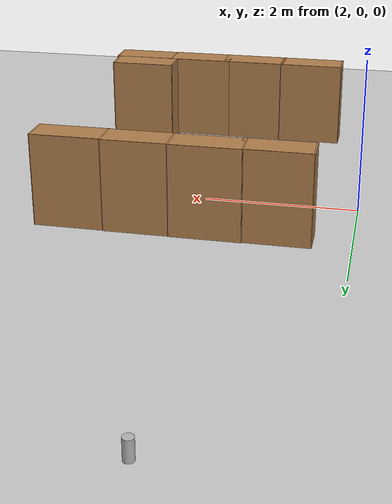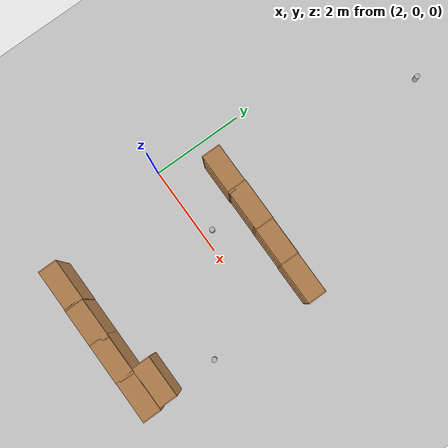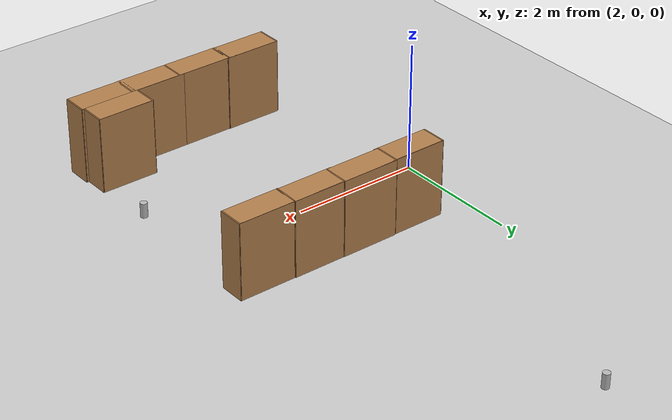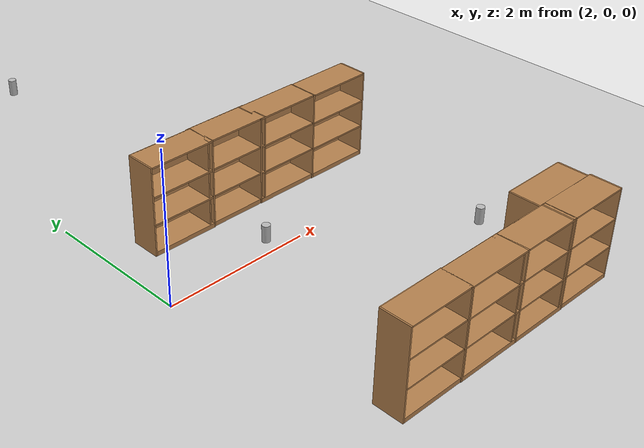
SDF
<sdf version="1.7">
 <world name="default">
  <model name="ground_plane">
   <static>1</static>
   <link name="link">
    <collision name="collision">
     <geometry><plane><normal>0 0 1</normal><size>100 100</size></plane></geometry>
     <surface>
      <contact><collide_bitmask>65535</collide_bitmask></contact>
      <friction><ode><mu>100</mu><mu2>50</mu2></ode></friction>
     </surface>
    </collision>
    <visual name="visual">
     <cast_shadows>0</cast_shadows>
     <geometry><plane><normal>0 0 1</normal><size>100 100</size></plane></geometry>
     <material>
      <script><uri>file://media/materials/scripts/gazebo.material</uri><name>Gazebo/Grey</name></script>
     </material>
    </visual>
   </link>
  </model>
  <model name="bookshelf">
   <static>1</static>
   <link name="link">
    <inertial><mass>1</mass></inertial>
    <collision name="back">
     <pose>0 0.005 0.6 0 -0 0</pose>
     <geometry><box><size>0.9 0.01 1.2</size></box></geometry>
    </collision>
    <visual name="visual1">
     <pose>0 0.005 0.6 0 -0 0</pose>
     <geometry><box><size>0.9 0.01 1.2</size></box></geometry>
     <material>
      <script><uri>file://media/materials/scripts/gazebo.material</uri><name>Gazebo/Wood</name></script>
     </material>
    </visual>
    <collision name="left_side">
     <pose>0.45 -0.195 0.6 0 -0 0</pose>
     <geometry><box><size>0.02 0.4 1.2</size></box></geometry>
    </collision>
    <visual name="visual2">
     <pose>0.45 -0.195 0.6 0 -0 0</pose>
     <geometry><box><size>0.02 0.4 1.2</size></box></geometry>
     <material>
      <script><uri>file://media/materials/scripts/gazebo.material</uri><name>Gazebo/Wood</name></script>
     </material>
    </visual>
    <collision name="right_side">
     <pose>-0.45 -0.195 0.6 0 -0 0</pose>
     <geometry><box><size>0.02 0.4 1.2</size></box></geometry>
    </collision>
    <visual name="visual3">
     <pose>-0.45 -0.195 0.6 0 -0 0</pose>
     <geometry><box><size>0.02 0.4 1.2</size></box></geometry>
     <material>
      <script><uri>file://media/materials/scripts/gazebo.material</uri><name>Gazebo/Wood</name></script>
     </material>
    </visual>
    <collision name="bottom">
     <pose>0 -0.195 0.03 0 -0 0</pose>
     <geometry><box><size>0.88 0.4 0.06</size></box></geometry>
    </collision>
    <visual name="visual4">
     <pose>0 -0.195 0.03 0 -0 0</pose>
     <geometry><box><size>0.88 0.4 0.06</size></box></geometry>
     <material>
      <script><uri>file://media/materials/scripts/gazebo.material</uri><name>Gazebo/Wood</name></script>
     </material>
    </visual>
    <collision name="top">
     <pose>0 -0.195 1.19 0 -0 0</pose>
     <geometry><box><size>0.88 0.4 0.02</size></box></geometry>
    </collision>
    <visual name="visual5">
     <pose>0 -0.195 1.19 0 -0 0</pose>
     <geometry><box><size>0.88 0.4 0.02</size></box></geometry>
     <material>
      <script><uri>file://media/materials/scripts/gazebo.material</uri><name>Gazebo/Wood</name></script>
     </material>
    </visual>
    <collision name="low_shelf">
     <pose>0 -0.195 0.43 0 -0 0</pose>
     <geometry><box><size>0.88 0.4 0.02</size></box></geometry>
    </collision>
    <visual name="visual6">
     <pose>0 -0.195 0.43 0 -0 0</pose>
     <geometry><box><size>0.88 0.4 0.02</size></box></geometry>
     <material>
      <script><uri>file://media/materials/scripts/gazebo.material</uri><name>Gazebo/Wood</name></script>
     </material>
    </visual>
    <collision name="high_shelf">
     <pose>0 -0.195 0.8 0 -0 0</pose>
     <geometry><box><size>0.88 0.4 0.02</size></box></geometry>
    </collision>
    <visual name="visual7">
     <pose>0 -0.195 0.8 0 -0 0</pose>
     <geometry><box><size>0.88 0.4 0.02</size></box></geometry>
     <material>
      <script><uri>file://media/materials/scripts/gazebo.material</uri><name>Gazebo/Wood</name></script>
     </material>
    </visual>
   </link>
   <pose>5.47624 -2.56833 0 0 -0 0</pose>
  </model>
  <model name="bookshelf_0">
   <static>1</static>
   <link name="link">
    <inertial><mass>1</mass></inertial>
    <collision name="back">
     <pose>0 0.005 0.6 0 -0 0</pose>
     <geometry><box><size>0.9 0.01 1.2</size></box></geometry>
    </collision>
    <visual name="visual1">
     <pose>0 0.005 0.6 0 -0 0</pose>
     <geometry><box><size>0.9 0.01 1.2</size></box></geometry>
     <material>
      <script><uri>file://media/materials/scripts/gazebo.material</uri><name>Gazebo/Wood</name></script>
     </material>
    </visual>
    <collision name="left_side">
     <pose>0.45 -0.195 0.6 0 -0 0</pose>
     <geometry><box><size>0.02 0.4 1.2</size></box></geometry>
    </collision>
    <visual name="visual2">
     <pose>0.45 -0.195 0.6 0 -0 0</pose>
     <geometry><box><size>0.02 0.4 1.2</size></box></geometry>
     <material>
      <script><uri>file://media/materials/scripts/gazebo.material</uri><name>Gazebo/Wood</name></script>
     </material>
    </visual>
    <collision name="right_side">
     <pose>-0.45 -0.195 0.6 0 -0 0</pose>
     <geometry><box><size>0.02 0.4 1.2</size></box></geometry>
    </collision>
    <visual name="visual3">
     <pose>-0.45 -0.195 0.6 0 -0 0</pose>
     <geometry><box><size>0.02 0.4 1.2</size></box></geometry>
     <material>
      <script><uri>file://media/materials/scripts/gazebo.material</uri><name>Gazebo/Wood</name></script>
     </material>
    </visual>
    <collision name="bottom">
     <pose>0 -0.195 0.03 0 -0 0</pose>
     <geometry><box><size>0.88 0.4 0.06</size></box></geometry>
    </collision>
    <visual name="visual4">
     <pose>0 -0.195 0.03 0 -0 0</pose>
     <geometry><box><size>0.88 0.4 0.06</size></box></geometry>
     <material>
      <script><uri>file://media/materials/scripts/gazebo.material</uri><name>Gazebo/Wood</name></script>
     </material>
    </visual>
    <collision name="top">
     <pose>0 -0.195 1.19 0 -0 0</pose>
     <geometry><box><size>0.88 0.4 0.02</size></box></geometry>
    </collision>
    <visual name="visual5">
     <pose>0 -0.195 1.19 0 -0 0</pose>
     <geometry><box><size>0.88 0.4 0.02</size></box></geometry>
     <material>
      <script><uri>file://media/materials/scripts/gazebo.material</uri><name>Gazebo/Wood</name></script>
     </material>
    </visual>
    <collision name="low_shelf">
     <pose>0 -0.195 0.43 0 -0 0</pose>
     <geometry><box><size>0.88 0.4 0.02</size></box></geometry>
    </collision>
    <visual name="visual6">
     <pose>0 -0.195 0.43 0 -0 0</pose>
     <geometry><box><size>0.88 0.4 0.02</size></box></geometry>
     <material>
      <script><uri>file://media/materials/scripts/gazebo.material</uri><name>Gazebo/Wood</name></script>
     </material>
    </visual>
    <collision name="high_shelf">
     <pose>0 -0.195 0.8 0 -0 0</pose>
     <geometry><box><size>0.88 0.4 0.02</size></box></geometry>
    </collision>
    <visual name="visual7">
     <pose>0 -0.195 0.8 0 -0 0</pose>
     <geometry><box><size>0.88 0.4 0.02</size></box></geometry>
     <material>
      <script><uri>file://media/materials/scripts/gazebo.material</uri><name>Gazebo/Wood</name></script>
     </material>
    </visual>
   </link>
   <pose>4.62121 -2.57351 0 0 -0 0</pose>
  </model>
  <model name="bookshelf_1">
   <static>1</static>
   <link name="link">
    <inertial><mass>1</mass></inertial>
    <collision name="back">
     <pose>0 0.005 0.6 0 -0 0</pose>
     <geometry><box><size>0.9 0.01 1.2</size></box></geometry>
    </collision>
    <visual name="visual1">
     <pose>0 0.005 0.6 0 -0 0</pose>
     <geometry><box><size>0.9 0.01 1.2</size></box></geometry>
     <material>
      <script><uri>file://media/materials/scripts/gazebo.material</uri><name>Gazebo/Wood</name></script>
     </material>
    </visual>
    <collision name="left_side">
     <pose>0.45 -0.195 0.6 0 -0 0</pose>
     <geometry><box><size>0.02 0.4 1.2</size></box></geometry>
    </collision>
    <visual name="visual2">
     <pose>0.45 -0.195 0.6 0 -0 0</pose>
     <geometry><box><size>0.02 0.4 1.2</size></box></geometry>
     <material>
      <script><uri>file://media/materials/scripts/gazebo.material</uri><name>Gazebo/Wood</name></script>
     </material>
    </visual>
    <collision name="right_side">
     <pose>-0.45 -0.195 0.6 0 -0 0</pose>
     <geometry><box><size>0.02 0.4 1.2</size></box></geometry>
    </collision>
    <visual name="visual3">
     <pose>-0.45 -0.195 0.6 0 -0 0</pose>
     <geometry><box><size>0.02 0.4 1.2</size></box></geometry>
     <material>
      <script><uri>file://media/materials/scripts/gazebo.material</uri><name>Gazebo/Wood</name></script>
     </material>
    </visual>
    <collision name="bottom">
     <pose>0 -0.195 0.03 0 -0 0</pose>
     <geometry><box><size>0.88 0.4 0.06</size></box></geometry>
    </collision>
    <visual name="visual4">
     <pose>0 -0.195 0.03 0 -0 0</pose>
     <geometry><box><size>0.88 0.4 0.06</size></box></geometry>
     <material>
      <script><uri>file://media/materials/scripts/gazebo.material</uri><name>Gazebo/Wood</name></script>
     </material>
    </visual>
    <collision name="top">
     <pose>0 -0.195 1.19 0 -0 0</pose>
     <geometry><box><size>0.88 0.4 0.02</size></box></geometry>
    </collision>
    <visual name="visual5">
     <pose>0 -0.195 1.19 0 -0 0</pose>
     <geometry><box><size>0.88 0.4 0.02</size></box></geometry>
     <material>
      <script><uri>file://media/materials/scripts/gazebo.material</uri><name>Gazebo/Wood</name></script>
     </material>
    </visual>
    <collision name="low_shelf">
     <pose>0 -0.195 0.43 0 -0 0</pose>
     <geometry><box><size>0.88 0.4 0.02</size></box></geometry>
    </collision>
    <visual name="visual6">
     <pose>0 -0.195 0.43 0 -0 0</pose>
     <geometry><box><size>0.88 0.4 0.02</size></box></geometry>
     <material>
      <script><uri>file://media/materials/scripts/gazebo.material</uri><name>Gazebo/Wood</name></script>
     </material>
    </visual>
    <collision name="high_shelf">
     <pose>0 -0.195 0.8 0 -0 0</pose>
     <geometry><box><size>0.88 0.4 0.02</size></box></geometry>
    </collision>
    <visual name="visual7">
     <pose>0 -0.195 0.8 0 -0 0</pose>
     <geometry><box><size>0.88 0.4 0.02</size></box></geometry>
     <material>
      <script><uri>file://media/materials/scripts/gazebo.material</uri><name>Gazebo/Wood</name></script>
     </material>
    </visual>
   </link>
   <pose>3.79592 -2.57373 0 0 -0 0</pose>
  </model>
  <model name="bookshelf_2">
   <static>1</static>
   <link name="link">
    <inertial><mass>1</mass></inertial>
    <collision name="back">
     <pose>0 0.005 0.6 0 -0 0</pose>
     <geometry><box><size>0.9 0.01 1.2</size></box></geometry>
    </collision>
    <visual name="visual1">
     <pose>0 0.005 0.6 0 -0 0</pose>
     <geometry><box><size>0.9 0.01 1.2</size></box></geometry>
     <material>
      <script><uri>file://media/materials/scripts/gazebo.material</uri><name>Gazebo/Wood</name></script>
     </material>
    </visual>
    <collision name="left_side">
     <pose>0.45 -0.195 0.6 0 -0 0</pose>
     <geometry><box><size>0.02 0.4 1.2</size></box></geometry>
    </collision>
    <visual name="visual2">
     <pose>0.45 -0.195 0.6 0 -0 0</pose>
     <geometry><box><size>0.02 0.4 1.2</size></box></geometry>
     <material>
      <script><uri>file://media/materials/scripts/gazebo.material</uri><name>Gazebo/Wood</name></script>
     </material>
    </visual>
    <collision name="right_side">
     <pose>-0.45 -0.195 0.6 0 -0 0</pose>
     <geometry><box><size>0.02 0.4 1.2</size></box></geometry>
    </collision>
    <visual name="visual3">
     <pose>-0.45 -0.195 0.6 0 -0 0</pose>
     <geometry><box><size>0.02 0.4 1.2</size></box></geometry>
     <material>
      <script><uri>file://media/materials/scripts/gazebo.material</uri><name>Gazebo/Wood</name></script>
     </material>
    </visual>
    <collision name="bottom">
     <pose>0 -0.195 0.03 0 -0 0</pose>
     <geometry><box><size>0.88 0.4 0.06</size></box></geometry>
    </collision>
    <visual name="visual4">
     <pose>0 -0.195 0.03 0 -0 0</pose>
     <geometry><box><size>0.88 0.4 0.06</size></box></geometry>
     <material>
      <script><uri>file://media/materials/scripts/gazebo.material</uri><name>Gazebo/Wood</name></script>
     </material>
    </visual>
    <collision name="top">
     <pose>0 -0.195 1.19 0 -0 0</pose>
     <geometry><box><size>0.88 0.4 0.02</size></box></geometry>
    </collision>
    <visual name="visual5">
     <pose>0 -0.195 1.19 0 -0 0</pose>
     <geometry><box><size>0.88 0.4 0.02</size></box></geometry>
     <material>
      <script><uri>file://media/materials/scripts/gazebo.material</uri><name>Gazebo/Wood</name></script>
     </material>
    </visual>
    <collision name="low_shelf">
     <pose>0 -0.195 0.43 0 -0 0</pose>
     <geometry><box><size>0.88 0.4 0.02</size></box></geometry>
    </collision>
    <visual name="visual6">
     <pose>0 -0.195 0.43 0 -0 0</pose>
     <geometry><box><size>0.88 0.4 0.02</size></box></geometry>
     <material>
      <script><uri>file://media/materials/scripts/gazebo.material</uri><name>Gazebo/Wood</name></script>
     </material>
    </visual>
    <collision name="high_shelf">
     <pose>0 -0.195 0.8 0 -0 0</pose>
     <geometry><box><size>0.88 0.4 0.02</size></box></geometry>
    </collision>
    <visual name="visual7">
     <pose>0 -0.195 0.8 0 -0 0</pose>
     <geometry><box><size>0.88 0.4 0.02</size></box></geometry>
     <material>
      <script><uri>file://media/materials/scripts/gazebo.material</uri><name>Gazebo/Wood</name></script>
     </material>
    </visual>
   </link>
   <pose>2.92357 -2.56651 0 0 -0 0</pose>
  </model>
  <model name="bookshelf_4">
   <static>1</static>
   <link name="link">
    <inertial><mass>1</mass></inertial>
    <collision name="back">
     <pose>0 0.005 0.6 0 -0 0</pose>
     <geometry><box><size>0.9 0.01 1.2</size></box></geometry>
    </collision>
    <visual name="visual1">
     <pose>0 0.005 0.6 0 -0 0</pose>
     <geometry><box><size>0.9 0.01 1.2</size></box></geometry>
     <material>
      <script><uri>file://media/materials/scripts/gazebo.material</uri><name>Gazebo/Wood</name></script>
     </material>
    </visual>
    <collision name="left_side">
     <pose>0.45 -0.195 0.6 0 -0 0</pose>
     <geometry><box><size>0.02 0.4 1.2</size></box></geometry>
    </collision>
    <visual name="visual2">
     <pose>0.45 -0.195 0.6 0 -0 0</pose>
     <geometry><box><size>0.02 0.4 1.2</size></box></geometry>
     <material>
      <script><uri>file://media/materials/scripts/gazebo.material</uri><name>Gazebo/Wood</name></script>
     </material>
    </visual>
    <collision name="right_side">
     <pose>-0.45 -0.195 0.6 0 -0 0</pose>
     <geometry><box><size>0.02 0.4 1.2</size></box></geometry>
    </collision>
    <visual name="visual3">
     <pose>-0.45 -0.195 0.6 0 -0 0</pose>
     <geometry><box><size>0.02 0.4 1.2</size></box></geometry>
     <material>
      <script><uri>file://media/materials/scripts/gazebo.material</uri><name>Gazebo/Wood</name></script>
     </material>
    </visual>
    <collision name="bottom">
     <pose>0 -0.195 0.03 0 -0 0</pose>
     <geometry><box><size>0.88 0.4 0.06</size></box></geometry>
    </collision>
    <visual name="visual4">
     <pose>0 -0.195 0.03 0 -0 0</pose>
     <geometry><box><size>0.88 0.4 0.06</size></box></geometry>
     <material>
      <script><uri>file://media/materials/scripts/gazebo.material</uri><name>Gazebo/Wood</name></script>
     </material>
    </visual>
    <collision name="top">
     <pose>0 -0.195 1.19 0 -0 0</pose>
     <geometry><box><size>0.88 0.4 0.02</size></box></geometry>
    </collision>
    <visual name="visual5">
     <pose>0 -0.195 1.19 0 -0 0</pose>
     <geometry><box><size>0.88 0.4 0.02</size></box></geometry>
     <material>
      <script><uri>file://media/materials/scripts/gazebo.material</uri><name>Gazebo/Wood</name></script>
     </material>
    </visual>
    <collision name="low_shelf">
     <pose>0 -0.195 0.43 0 -0 0</pose>
     <geometry><box><size>0.88 0.4 0.02</size></box></geometry>
    </collision>
    <visual name="visual6">
     <pose>0 -0.195 0.43 0 -0 0</pose>
     <geometry><box><size>0.88 0.4 0.02</size></box></geometry>
     <material>
      <script><uri>file://media/materials/scripts/gazebo.material</uri><name>Gazebo/Wood</name></script>
     </material>
    </visual>
    <collision name="high_shelf">
     <pose>0 -0.195 0.8 0 -0 0</pose>
     <geometry><box><size>0.88 0.4 0.02</size></box></geometry>
    </collision>
    <visual name="visual7">
     <pose>0 -0.195 0.8 0 -0 0</pose>
     <geometry><box><size>0.88 0.4 0.02</size></box></geometry>
     <material>
      <script><uri>file://media/materials/scripts/gazebo.material</uri><name>Gazebo/Wood</name></script>
     </material>
    </visual>
   </link>
   <pose>5.50204 1.23777 0 0 -0 0</pose>
  </model>
  <model name="bookshelf_5">
   <static>1</static>
   <link name="link">
    <inertial><mass>1</mass></inertial>
    <collision name="back">
     <pose>0 0.005 0.6 0 -0 0</pose>
     <geometry><box><size>0.9 0.01 1.2</size></box></geometry>
    </collision>
    <visual name="visual1">
     <pose>0 0.005 0.6 0 -0 0</pose>
     <geometry><box><size>0.9 0.01 1.2</size></box></geometry>
     <material>
      <script><uri>file://media/materials/scripts/gazebo.material</uri><name>Gazebo/Wood</name></script>
     </material>
    </visual>
    <collision name="left_side">
     <pose>0.45 -0.195 0.6 0 -0 0</pose>
     <geometry><box><size>0.02 0.4 1.2</size></box></geometry>
    </collision>
    <visual name="visual2">
     <pose>0.45 -0.195 0.6 0 -0 0</pose>
     <geometry><box><size>0.02 0.4 1.2</size></box></geometry>
     <material>
      <script><uri>file://media/materials/scripts/gazebo.material</uri><name>Gazebo/Wood</name></script>
     </material>
    </visual>
    <collision name="right_side">
     <pose>-0.45 -0.195 0.6 0 -0 0</pose>
     <geometry><box><size>0.02 0.4 1.2</size></box></geometry>
    </collision>
    <visual name="visual3">
     <pose>-0.45 -0.195 0.6 0 -0 0</pose>
     <geometry><box><size>0.02 0.4 1.2</size></box></geometry>
     <material>
      <script><uri>file://media/materials/scripts/gazebo.material</uri><name>Gazebo/Wood</name></script>
     </material>
    </visual>
    <collision name="bottom">
     <pose>0 -0.195 0.03 0 -0 0</pose>
     <geometry><box><size>0.88 0.4 0.06</size></box></geometry>
    </collision>
    <visual name="visual4">
     <pose>0 -0.195 0.03 0 -0 0</pose>
     <geometry><box><size>0.88 0.4 0.06</size></box></geometry>
     <material>
      <script><uri>file://media/materials/scripts/gazebo.material</uri><name>Gazebo/Wood</name></script>
     </material>
    </visual>
    <collision name="top">
     <pose>0 -0.195 1.19 0 -0 0</pose>
     <geometry><box><size>0.88 0.4 0.02</size></box></geometry>
    </collision>
    <visual name="visual5">
     <pose>0 -0.195 1.19 0 -0 0</pose>
     <geometry><box><size>0.88 0.4 0.02</size></box></geometry>
     <material>
      <script><uri>file://media/materials/scripts/gazebo.material</uri><name>Gazebo/Wood</name></script>
     </material>
    </visual>
    <collision name="low_shelf">
     <pose>0 -0.195 0.43 0 -0 0</pose>
     <geometry><box><size>0.88 0.4 0.02</size></box></geometry>
    </collision>
    <visual name="visual6">
     <pose>0 -0.195 0.43 0 -0 0</pose>
     <geometry><box><size>0.88 0.4 0.02</size></box></geometry>
     <material>
      <script><uri>file://media/materials/scripts/gazebo.material</uri><name>Gazebo/Wood</name></script>
     </material>
    </visual>
    <collision name="high_shelf">
     <pose>0 -0.195 0.8 0 -0 0</pose>
     <geometry><box><size>0.88 0.4 0.02</size></box></geometry>
    </collision>
    <visual name="visual7">
     <pose>0 -0.195 0.8 0 -0 0</pose>
     <geometry><box><size>0.88 0.4 0.02</size></box></geometry>
     <material>
      <script><uri>file://media/materials/scripts/gazebo.material</uri><name>Gazebo/Wood</name></script>
     </material>
    </visual>
   </link>
   <pose>4.60911 1.24725 0 0 -0 0</pose>
  </model>
  <model name="bookshelf_6">
   <static>1</static>
   <link name="link">
    <inertial><mass>1</mass></inertial>
    <collision name="back">
     <pose>0 0.005 0.6 0 -0 0</pose>
     <geometry><box><size>0.9 0.01 1.2</size></box></geometry>
    </collision>
    <visual name="visual1">
     <pose>0 0.005 0.6 0 -0 0</pose>
     <geometry><box><size>0.9 0.01 1.2</size></box></geometry>
     <material>
      <script><uri>file://media/materials/scripts/gazebo.material</uri><name>Gazebo/Wood</name></script>
     </material>
    </visual>
    <collision name="left_side">
     <pose>0.45 -0.195 0.6 0 -0 0</pose>
     <geometry><box><size>0.02 0.4 1.2</size></box></geometry>
    </collision>
    <visual name="visual2">
     <pose>0.45 -0.195 0.6 0 -0 0</pose>
     <geometry><box><size>0.02 0.4 1.2</size></box></geometry>
     <material>
      <script><uri>file://media/materials/scripts/gazebo.material</uri><name>Gazebo/Wood</name></script>
     </material>
    </visual>
    <collision name="right_side">
     <pose>-0.45 -0.195 0.6 0 -0 0</pose>
     <geometry><box><size>0.02 0.4 1.2</size></box></geometry>
    </collision>
    <visual name="visual3">
     <pose>-0.45 -0.195 0.6 0 -0 0</pose>
     <geometry><box><size>0.02 0.4 1.2</size></box></geometry>
     <material>
      <script><uri>file://media/materials/scripts/gazebo.material</uri><name>Gazebo/Wood</name></script>
     </material>
    </visual>
    <collision name="bottom">
     <pose>0 -0.195 0.03 0 -0 0</pose>
     <geometry><box><size>0.88 0.4 0.06</size></box></geometry>
    </collision>
    <visual name="visual4">
     <pose>0 -0.195 0.03 0 -0 0</pose>
     <geometry><box><size>0.88 0.4 0.06</size></box></geometry>
     <material>
      <script><uri>file://media/materials/scripts/gazebo.material</uri><name>Gazebo/Wood</name></script>
     </material>
    </visual>
    <collision name="top">
     <pose>0 -0.195 1.19 0 -0 0</pose>
     <geometry><box><size>0.88 0.4 0.02</size></box></geometry>
    </collision>
    <visual name="visual5">
     <pose>0 -0.195 1.19 0 -0 0</pose>
     <geometry><box><size>0.88 0.4 0.02</size></box></geometry>
     <material>
      <script><uri>file://media/materials/scripts/gazebo.material</uri><name>Gazebo/Wood</name></script>
     </material>
    </visual>
    <collision name="low_shelf">
     <pose>0 -0.195 0.43 0 -0 0</pose>
     <geometry><box><size>0.88 0.4 0.02</size></box></geometry>
    </collision>
    <visual name="visual6">
     <pose>0 -0.195 0.43 0 -0 0</pose>
     <geometry><box><size>0.88 0.4 0.02</size></box></geometry>
     <material>
      <script><uri>file://media/materials/scripts/gazebo.material</uri><name>Gazebo/Wood</name></script>
     </material>
    </visual>
    <collision name="high_shelf">
     <pose>0 -0.195 0.8 0 -0 0</pose>
     <geometry><box><size>0.88 0.4 0.02</size></box></geometry>
    </collision>
    <visual name="visual7">
     <pose>0 -0.195 0.8 0 -0 0</pose>
     <geometry><box><size>0.88 0.4 0.02</size></box></geometry>
     <material>
      <script><uri>file://media/materials/scripts/gazebo.material</uri><name>Gazebo/Wood</name></script>
     </material>
    </visual>
   </link>
   <pose>3.77814 1.25349 0 0 -0 0</pose>
  </model>
  <model name="bookshelf_7">
   <static>1</static>
   <link name="link">
    <inertial><mass>1</mass></inertial>
    <collision name="back">
     <pose>0 0.005 0.6 0 -0 0</pose>
     <geometry><box><size>0.9 0.01 1.2</size></box></geometry>
    </collision>
    <visual name="visual1">
     <pose>0 0.005 0.6 0 -0 0</pose>
     <geometry><box><size>0.9 0.01 1.2</size></box></geometry>
     <material>
      <script><uri>file://media/materials/scripts/gazebo.material</uri><name>Gazebo/Wood</name></script>
     </material>
    </visual>
    <collision name="left_side">
     <pose>0.45 -0.195 0.6 0 -0 0</pose>
     <geometry><box><size>0.02 0.4 1.2</size></box></geometry>
    </collision>
    <visual name="visual2">
     <pose>0.45 -0.195 0.6 0 -0 0</pose>
     <geometry><box><size>0.02 0.4 1.2</size></box></geometry>
     <material>
      <script><uri>file://media/materials/scripts/gazebo.material</uri><name>Gazebo/Wood</name></script>
     </material>
    </visual>
    <collision name="right_side">
     <pose>-0.45 -0.195 0.6 0 -0 0</pose>
     <geometry><box><size>0.02 0.4 1.2</size></box></geometry>
    </collision>
    <visual name="visual3">
     <pose>-0.45 -0.195 0.6 0 -0 0</pose>
     <geometry><box><size>0.02 0.4 1.2</size></box></geometry>
     <material>
      <script><uri>file://media/materials/scripts/gazebo.material</uri><name>Gazebo/Wood</name></script>
     </material>
    </visual>
    <collision name="bottom">
     <pose>0 -0.195 0.03 0 -0 0</pose>
     <geometry><box><size>0.88 0.4 0.06</size></box></geometry>
    </collision>
    <visual name="visual4">
     <pose>0 -0.195 0.03 0 -0 0</pose>
     <geometry><box><size>0.88 0.4 0.06</size></box></geometry>
     <material>
      <script><uri>file://media/materials/scripts/gazebo.material</uri><name>Gazebo/Wood</name></script>
     </material>
    </visual>
    <collision name="top">
     <pose>0 -0.195 1.19 0 -0 0</pose>
     <geometry><box><size>0.88 0.4 0.02</size></box></geometry>
    </collision>
    <visual name="visual5">
     <pose>0 -0.195 1.19 0 -0 0</pose>
     <geometry><box><size>0.88 0.4 0.02</size></box></geometry>
     <material>
      <script><uri>file://media/materials/scripts/gazebo.material</uri><name>Gazebo/Wood</name></script>
     </material>
    </visual>
    <collision name="low_shelf">
     <pose>0 -0.195 0.43 0 -0 0</pose>
     <geometry><box><size>0.88 0.4 0.02</size></box></geometry>
    </collision>
    <visual name="visual6">
     <pose>0 -0.195 0.43 0 -0 0</pose>
     <geometry><box><size>0.88 0.4 0.02</size></box></geometry>
     <material>
      <script><uri>file://media/materials/scripts/gazebo.material</uri><name>Gazebo/Wood</name></script>
     </material>
    </visual>
    <collision name="high_shelf">
     <pose>0 -0.195 0.8 0 -0 0</pose>
     <geometry><box><size>0.88 0.4 0.02</size></box></geometry>
    </collision>
    <visual name="visual7">
     <pose>0 -0.195 0.8 0 -0 0</pose>
     <geometry><box><size>0.88 0.4 0.02</size></box></geometry>
     <material>
      <script><uri>file://media/materials/scripts/gazebo.material</uri><name>Gazebo/Wood</name></script>
     </material>
    </visual>
   </link>
   <pose>2.93535 1.24211 0 0 -0 0</pose>
  </model>
  <model name="bookshelf_12">
   <static>1</static>
   <link name="link">
    <inertial><mass>1</mass></inertial>
    <collision name="back">
     <pose>0 0.005 0.6 0 -0 0</pose>
     <geometry><box><size>0.9 0.01 1.2</size></box></geometry>
    </collision>
    <visual name="visual1">
     <pose>0 0.005 0.6 0 -0 0</pose>
     <geometry><box><size>0.9 0.01 1.2</size></box></geometry>
     <material>
      <script><uri>file://media/materials/scripts/gazebo.material</uri><name>Gazebo/Wood</name></script>
     </material>
    </visual>
    <collision name="left_side">
     <pose>0.45 -0.195 0.6 0 -0 0</pose>
     <geometry><box><size>0.02 0.4 1.2</size></box></geometry>
    </collision>
    <visual name="visual2">
     <pose>0.45 -0.195 0.6 0 -0 0</pose>
     <geometry><box><size>0.02 0.4 1.2</size></box></geometry>
     <material>
      <script><uri>file://media/materials/scripts/gazebo.material</uri><name>Gazebo/Wood</name></script>
     </material>
    </visual>
    <collision name="right_side">
     <pose>-0.45 -0.195 0.6 0 -0 0</pose>
     <geometry><box><size>0.02 0.4 1.2</size></box></geometry>
    </collision>
    <visual name="visual3">
     <pose>-0.45 -0.195 0.6 0 -0 0</pose>
     <geometry><box><size>0.02 0.4 1.2</size></box></geometry>
     <material>
      <script><uri>file://media/materials/scripts/gazebo.material</uri><name>Gazebo/Wood</name></script>
     </material>
    </visual>
    <collision name="bottom">
     <pose>0 -0.195 0.03 0 -0 0</pose>
     <geometry><box><size>0.88 0.4 0.06</size></box></geometry>
    </collision>
    <visual name="visual4">
     <pose>0 -0.195 0.03 0 -0 0</pose>
     <geometry><box><size>0.88 0.4 0.06</size></box></geometry>
     <material>
      <script><uri>file://media/materials/scripts/gazebo.material</uri><name>Gazebo/Wood</name></script>
     </material>
    </visual>
    <collision name="top">
     <pose>0 -0.195 1.19 0 -0 0</pose>
     <geometry><box><size>0.88 0.4 0.02</size></box></geometry>
    </collision>
    <visual name="visual5">
     <pose>0 -0.195 1.19 0 -0 0</pose>
     <geometry><box><size>0.88 0.4 0.02</size></box></geometry>
     <material>
      <script><uri>file://media/materials/scripts/gazebo.material</uri><name>Gazebo/Wood</name></script>
     </material>
    </visual>
    <collision name="low_shelf">
     <pose>0 -0.195 0.43 0 -0 0</pose>
     <geometry><box><size>0.88 0.4 0.02</size></box></geometry>
    </collision>
    <visual name="visual6">
     <pose>0 -0.195 0.43 0 -0 0</pose>
     <geometry><box><size>0.88 0.4 0.02</size></box></geometry>
     <material>
      <script><uri>file://media/materials/scripts/gazebo.material</uri><name>Gazebo/Wood</name></script>
     </material>
    </visual>
    <collision name="high_shelf">
     <pose>0 -0.195 0.8 0 -0 0</pose>
     <geometry><box><size>0.88 0.4 0.02</size></box></geometry>
    </collision>
    <visual name="visual7">
     <pose>0 -0.195 0.8 0 -0 0</pose>
     <geometry><box><size>0.88 0.4 0.02</size></box></geometry>
     <material>
      <script><uri>file://media/materials/scripts/gazebo.material</uri><name>Gazebo/Wood</name></script>
     </material>
    </visual>
   </link>
   <pose>5.43606 -2.17643 0 0 -0 0</pose>
  </model>
  <model name="beer_2">
   <link name="link">
    <pose>0 0 0.115 0 -0 0</pose>
    <inertial>
     <mass>0.39</mass>
     <inertia><ixx>0.00058</ixx><ixy>0</ixy><ixz>0</ixz><iyy>0.00058</iyy><iyz>0</iyz><izz>0.00019</izz></inertia>
    </inertial>
    <collision name="collision">
     <geometry><cylinder><radius>0.055</radius><length>0.23</length></cylinder></geometry>
    </collision>
    <visual name="visual">
     <geometry><cylinder><radius>0.055</radius><length>0.23</length></cylinder></geometry>
     <material>
      <script>
       <uri>model://beer/materials/scripts</uri>
       <uri>model://beer/materials/textures</uri>
       <name>Beer/Diffuse</name>
      </script>
     </material>
    </visual>
   </link>
   <pose>3.53403 5.51994 -7e-06 -1e-06 -0 -2.8e-05</pose>
  </model>
  <model name="beer_5">
   <link name="link">
    <pose>0 0 0.115 0 -0 0</pose>
    <inertial>
     <mass>0.39</mass>
     <inertia><ixx>0.00058</ixx><ixy>0</ixy><ixz>0</ixz><iyy>0.00058</iyy><iyz>0</iyz><izz>0.00019</izz></inertia>
    </inertial>
    <collision name="collision">
     <geometry><cylinder><radius>0.055</radius><length>0.23</length></cylinder></geometry>
    </collision>
    <visual name="visual">
     <geometry><cylinder><radius>0.055</radius><length>0.23</length></cylinder></geometry>
     <material>
      <script>
       <uri>model://beer/materials/scripts</uri>
       <uri>model://beer/materials/textures</uri>
       <name>Beer/Diffuse</name>
      </script>
     </material>
    </visual>
   </link>
   <pose>3.63518 0.21244 -2e-06 1e-06 -0 -1e-05</pose>
  </model>
  <model name="beer_6">
   <link name="link">
    <pose>0 0 0.115 0 -0 0</pose>
    <inertial>
     <mass>0.39</mass>
     <inertia><ixx>0.00058</ixx><ixy>0</ixy><ixz>0</ixz><iyy>0.00058</iyy><iyz>0</iyz><izz>0.00019</izz></inertia>
    </inertial>
    <collision name="collision">
     <geometry><cylinder><radius>0.055</radius><length>0.23</length></cylinder></geometry>
    </collision>
    <visual name="visual">
     <geometry><cylinder><radius>0.055</radius><length>0.23</length></cylinder></geometry>
     <material>
      <script>
       <uri>model://beer/materials/scripts</uri>
       <uri>model://beer/materials/textures</uri>
       <name>Beer/Diffuse</name>
      </script>
     </material>
    </visual>
   </link>
   <pose>5.79385 -1.28391 -2e-06 1e-06 0 -8e-06</pose>
  </model>
 </world>
</sdf>
